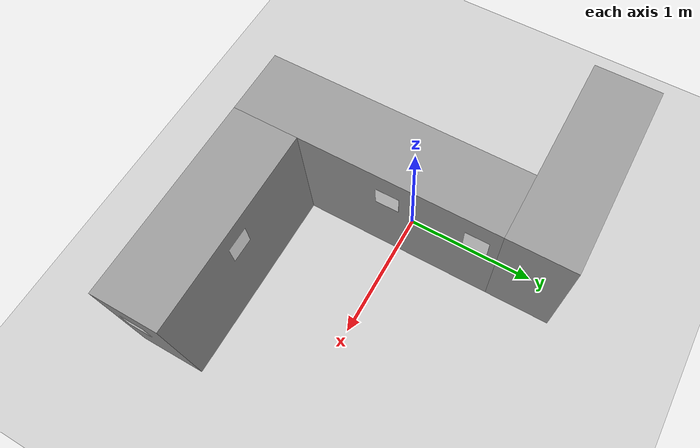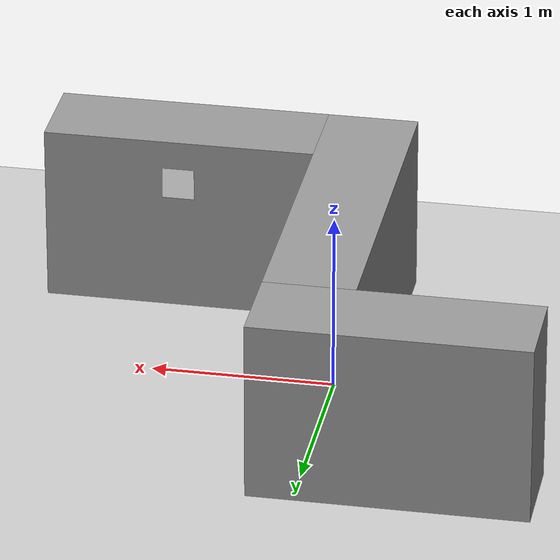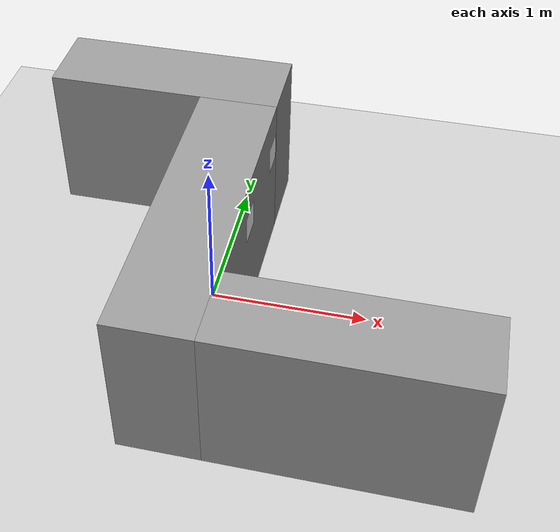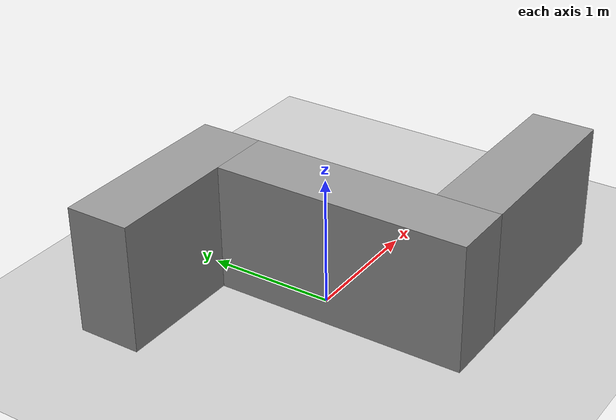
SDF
<sdf version="1.7">
 <world name="default">
  <model name="ground_plane">
   <static>1</static>
   <link name="link">
    <collision name="collision">
     <geometry><plane><normal>0 0 1</normal><size>100 100</size></plane></geometry>
     <surface>
      <contact><collide_bitmask>65535</collide_bitmask></contact>
      <friction><ode><mu>100</mu><mu2>50</mu2></ode></friction>
     </surface>
    </collision>
    <visual name="visual">
     <cast_shadows>0</cast_shadows>
     <geometry><plane><normal>0 0 1</normal><size>100 100</size></plane></geometry>
     <material>
      <script><uri>file://media/materials/scripts/gazebo.material</uri><name>Gazebo/Grey</name></script>
     </material>
    </visual>
   </link>
  </model>
  <model name="marker_0">
   <link name="marker">
    <visual name="visual">
     <geometry><box><size>0.1778 0.1778 1e-05</size></box></geometry>
     <material>
      <script>
       <uri>model://marker_0/materials/scripts</uri>
       <uri>model://marker_0/materials/textures</uri>
       <name>ArucoVisualMarker0/Marker</name>
      </script>
      <ambient>1 1 1 1</ambient>
      <diffuse>1 1 1 1</diffuse>
      <specular>0 0 0 1</specular>
      <emissive>1 1 1 0</emissive>
      <shader type="vertex"><normal_map>__default__</normal_map></shader>
     </material>
    </visual>
    <collision name="collision"><geometry><box><size>0.1778 0.1778 1e-05</size></box></geometry></collision>
   </link>
   <link name="marker_pad">
    <pose relative_to="marker">0 0 -0.001 0 -0 0</pose>
    <visual name="visual">
     <geometry><box><size>0.1778 0.1778 1e-05</size></box></geometry>
     <material>
      <lighting>1</lighting>
      <script><uri>file://media/materials/scripts/gazebo.material</uri><name>Gazebo/White</name></script>
      <ambient>0.3 0.3 0.3 1</ambient>
      <diffuse>0.7 0.7 0.7 1</diffuse>
      <specular>0.01 0.01 0.01 1</specular>
      <emissive>1 1 1 0</emissive>
      <shader type="vertex"><normal_map>__default__</normal_map></shader>
     </material>
    </visual>
    <collision name="collision"><geometry><box><size>0.1778 0.1778 1e-05</size></box></geometry></collision>
   </link>
   <joint name="marker_JOINT_marker_pad" type="revolute">
    <parent>marker</parent>
    <child>marker_pad</child>
    <axis>
     <xyz>0 0 1</xyz>
     <limit><upper>0</upper><lower>0</lower></limit>
     <dynamics><spring_reference>0</spring_reference><spring_stiffness>0</spring_stiffness></dynamics>
    </axis>
   </joint>
   <static>1</static>
   <pose>1.76 -1 0.75 0 1.57 0</pose>
  </model>
  <model name="marker_1">
   <link name="marker">
    <visual name="visual">
     <geometry><box><size>0.1778 0.1778 1e-05</size></box></geometry>
     <material>
      <script>
       <uri>model://marker_1/materials/scripts</uri>
       <uri>model://marker_1/materials/textures</uri>
       <name>ArucoVisualMarker1/Marker</name>
      </script>
      <ambient>1 1 1 1</ambient>
      <diffuse>1 1 1 1</diffuse>
      <specular>0 0 0 1</specular>
      <emissive>1 1 1 0</emissive>
      <shader type="vertex"><normal_map>__default__</normal_map></shader>
     </material>
    </visual>
    <collision name="collision"><geometry><box><size>0.1778 0.1778 1e-05</size></box></geometry></collision>
   </link>
   <link name="marker_pad">
    <pose relative_to="marker">0 0 -0.001 0 -0 0</pose>
    <visual name="visual">
     <geometry><box><size>0.1778 0.1778 1e-05</size></box></geometry>
     <material>
      <lighting>1</lighting>
      <script><uri>file://media/materials/scripts/gazebo.material</uri><name>Gazebo/White</name></script>
      <ambient>0.3 0.3 0.3 1</ambient>
      <diffuse>0.7 0.7 0.7 1</diffuse>
      <specular>0.01 0.01 0.01 1</specular>
      <emissive>1 1 1 0</emissive>
      <shader type="vertex"><normal_map>__default__</normal_map></shader>
     </material>
    </visual>
    <collision name="collision"><geometry><box><size>0.1778 0.1778 1e-05</size></box></geometry></collision>
   </link>
   <joint name="marker_JOINT_marker_pad" type="revolute">
    <parent>marker</parent>
    <child>marker_pad</child>
    <axis>
     <xyz>0 0 1</xyz>
     <limit><upper>0</upper><lower>0</lower></limit>
     <dynamics><spring_reference>0</spring_reference><spring_stiffness>0</spring_stiffness></dynamics>
    </axis>
   </joint>
   <static>1</static>
   <pose>1.00167 -0.749626 0.75 -1.57002 1.57 -2.4e-05</pose>
  </model>
  <model name="marker_2">
   <link name="marker">
    <visual name="visual">
     <geometry><box><size>0.1778 0.1778 1e-05</size></box></geometry>
     <material>
      <script>
       <uri>model://marker_2/materials/scripts</uri>
       <uri>model://marker_2/materials/textures</uri>
       <name>ArucoVisualMarker2/Marker</name>
      </script>
      <ambient>1 1 1 1</ambient>
      <diffuse>1 1 1 1</diffuse>
      <specular>0 0 0 1</specular>
      <emissive>1 1 1 0</emissive>
      <shader type="vertex"><normal_map>__default__</normal_map></shader>
     </material>
    </visual>
    <collision name="collision"><geometry><box><size>0.1778 0.1778 1e-05</size></box></geometry></collision>
   </link>
   <link name="marker_pad">
    <pose relative_to="marker">0 0 -0.001 0 -0 0</pose>
    <visual name="visual">
     <geometry><box><size>0.1778 0.1778 1e-05</size></box></geometry>
     <material>
      <lighting>1</lighting>
      <script><uri>file://media/materials/scripts/gazebo.material</uri><name>Gazebo/White</name></script>
      <ambient>0.3 0.3 0.3 1</ambient>
      <diffuse>0.7 0.7 0.7 1</diffuse>
      <specular>0.01 0.01 0.01 1</specular>
      <emissive>1 1 1 0</emissive>
      <shader type="vertex"><normal_map>__default__</normal_map></shader>
     </material>
    </visual>
    <collision name="collision"><geometry><box><size>0.1778 0.1778 1e-05</size></box></geometry></collision>
   </link>
   <joint name="marker_JOINT_marker_pad" type="revolute">
    <parent>marker</parent>
    <child>marker_pad</child>
    <axis>
     <xyz>0 0 1</xyz>
     <limit><upper>0</upper><lower>0</lower></limit>
     <dynamics><spring_reference>0</spring_reference><spring_stiffness>0</spring_stiffness></dynamics>
    </axis>
   </joint>
   <static>1</static>
   <pose>0.263077 -0.07 0.749978 3.1408 -1.57 -0.000796</pose>
  </model>
  <model name="marker_3">
   <link name="marker">
    <visual name="visual">
     <geometry><box><size>0.1778 0.1778 1e-05</size></box></geometry>
     <material>
      <script>
       <uri>model://marker_3/materials/scripts</uri>
       <uri>model://marker_3/materials/textures</uri>
       <name>ArucoVisualMarker3/Marker</name>
      </script>
      <ambient>1 1 1 1</ambient>
      <diffuse>1 1 1 1</diffuse>
      <specular>0 0 0 1</specular>
      <emissive>1 1 1 0</emissive>
      <shader type="vertex"><normal_map>__default__</normal_map></shader>
     </material>
    </visual>
    <collision name="collision"><geometry><box><size>0.1778 0.1778 1e-05</size></box></geometry></collision>
   </link>
   <link name="marker_pad">
    <pose relative_to="marker">0 0 -0.001 0 -0 0</pose>
    <visual name="visual">
     <geometry><box><size>0.1778 0.1778 1e-05</size></box></geometry>
     <material>
      <lighting>1</lighting>
      <script><uri>file://media/materials/scripts/gazebo.material</uri><name>Gazebo/White</name></script>
      <ambient>0.3 0.3 0.3 1</ambient>
      <diffuse>0.7 0.7 0.7 1</diffuse>
      <specular>0.01 0.01 0.01 1</specular>
      <emissive>1 1 1 0</emissive>
      <shader type="vertex"><normal_map>__default__</normal_map></shader>
     </material>
    </visual>
    <collision name="collision"><geometry><box><size>0.1778 0.1778 1e-05</size></box></geometry></collision>
   </link>
   <joint name="marker_JOINT_marker_pad" type="revolute">
    <parent>marker</parent>
    <child>marker_pad</child>
    <axis>
     <xyz>0 0 1</xyz>
     <limit><upper>0</upper><lower>0</lower></limit>
     <dynamics><spring_reference>0</spring_reference><spring_stiffness>0</spring_stiffness></dynamics>
    </axis>
   </joint>
   <static>1</static>
   <pose>0.26 0.59 0.75 1.57078 1e-06 1.56579</pose>
  </model>
  <model name="elka">
   <link name="link">
    <inertial>
     <mass>1</mass>
     <inertia>
      <ixx>0.166667</ixx>
      <ixy>0</ixy>
      <ixz>0</ixz>
      <iyy>0.166667</iyy>
      <iyz>0</iyz>
      <izz>0.166667</izz>
     </inertia>
    </inertial>
    <visual name="visual">
     <geometry><box><size>1.5 0.5 1</size></box></geometry>
     <material>
      <script><name>Gazebo/Grey</name><uri>file://media/materials/scripts/gazebo.material</uri></script>
      <shader type="pixel"><normal_map>__default__</normal_map></shader>
      <ambient>0.3 0.3 0.3 1</ambient>
      <diffuse>0.7 0.7 0.7 1</diffuse>
      <specular>0.01 0.01 0.01 1</specular>
      <emissive>0 0 0 1</emissive>
     </material>
    </visual>
    <collision name="collision">
     <geometry><box><size>1.5 0.5 1</size></box></geometry>
     <surface>
      <friction>
       <ode><mu>1</mu><mu2>1</mu2><fdir1>0 0 0</fdir1><slip1>0</slip1><slip2>0</slip2></ode>
       <torsional>
        <coefficient>1</coefficient>
        <patch_radius>0</patch_radius>
        <surface_radius>0</surface_radius>
        <use_patch_radius>1</use_patch_radius>
        <ode><slip>0</slip></ode>
       </torsional>
      </friction>
      <bounce><restitution_coefficient>0</restitution_coefficient><threshold>1e+06</threshold></bounce>
      <contact>
       <collide_without_contact>0</collide_without_contact>
       <collide_without_contact_bitmask>1</collide_without_contact_bitmask>
       <collide_bitmask>1</collide_bitmask>
       <ode>
        <soft_cfm>0</soft_cfm>
        <soft_erp>0.2</soft_erp>
        <kp>1e+13</kp>
        <kd>1</kd>
        <max_vel>0.01</max_vel>
        <min_depth>0</min_depth>
       </ode>
       <bullet>
        <split_impulse>1</split_impulse>
        <split_impulse_penetration_threshold>-0.01</split_impulse_penetration_threshold>
        <soft_cfm>0</soft_cfm>
        <soft_erp>0.2</soft_erp>
        <kp>1e+13</kp>
        <kd>1</kd>
       </bullet>
      </contact>
     </surface>
    </collision>
   </link>
   <link name="link_1">
    <inertial>
     <mass>1</mass>
     <inertia>
      <ixx>0.166667</ixx>
      <ixy>0</ixy>
      <ixz>0</ixz>
      <iyy>0.166667</iyy>
      <iyz>0</iyz>
      <izz>0.166667</izz>
     </inertia>
    </inertial>
    <pose>-1 0.75 0 0 -0 0</pose>
    <visual name="visual">
     <geometry><box><size>0.5 2 1</size></box></geometry>
     <material>
      <lighting>1</lighting>
      <script><uri>file://media/materials/scripts/gazebo.material</uri><name>Gazebo/Grey</name></script>
      <shader type="pixel"><normal_map>__default__</normal_map></shader>
      <ambient>0.3 0.3 0.3 1</ambient>
      <diffuse>0.7 0.7 0.7 1</diffuse>
      <specular>0.01 0.01 0.01 1</specular>
      <emissive>0 0 0 1</emissive>
     </material>
    </visual>
    <collision name="collision">
     <geometry><box><size>0.5 2 1</size></box></geometry>
     <surface>
      <friction>
       <ode><mu>1</mu><mu2>1</mu2><fdir1>0 0 0</fdir1><slip1>0</slip1><slip2>0</slip2></ode>
       <torsional>
        <coefficient>1</coefficient>
        <patch_radius>0</patch_radius>
        <surface_radius>0</surface_radius>
        <use_patch_radius>1</use_patch_radius>
        <ode><slip>0</slip></ode>
       </torsional>
      </friction>
      <bounce><restitution_coefficient>0</restitution_coefficient><threshold>1e+06</threshold></bounce>
      <contact>
       <collide_without_contact>0</collide_without_contact>
       <collide_without_contact_bitmask>1</collide_without_contact_bitmask>
       <collide_bitmask>1</collide_bitmask>
       <ode>
        <soft_cfm>0</soft_cfm>
        <soft_erp>0.2</soft_erp>
        <kp>1e+13</kp>
        <kd>1</kd>
        <max_vel>0.01</max_vel>
        <min_depth>0</min_depth>
       </ode>
       <bullet>
        <split_impulse>1</split_impulse>
        <split_impulse_penetration_threshold>-0.01</split_impulse_penetration_threshold>
        <soft_cfm>0</soft_cfm>
        <soft_erp>0.2</soft_erp>
        <kp>1e+13</kp>
        <kd>1</kd>
       </bullet>
      </contact>
     </surface>
    </collision>
   </link>
   <link name="link_clone">
    <inertial>
     <mass>1</mass>
     <inertia>
      <ixx>0.166667</ixx>
      <ixy>0</ixy>
      <ixz>0</ixz>
      <iyy>0.166667</iyy>
      <iyz>0</iyz>
      <izz>0.166667</izz>
     </inertia>
    </inertial>
    <pose>-1.5 2 0 0 -0 0</pose>
    <visual name="visual">
     <geometry><box><size>1.5 0.5 1</size></box></geometry>
     <material>
      <script><name>Gazebo/Grey</name><uri>file://media/materials/scripts/gazebo.material</uri></script>
      <shader type="pixel"><normal_map>__default__</normal_map></shader>
      <ambient>0.3 0.3 0.3 1</ambient>
      <diffuse>0.7 0.7 0.7 1</diffuse>
      <specular>0.01 0.01 0.01 1</specular>
      <emissive>0 0 0 1</emissive>
     </material>
    </visual>
    <collision name="collision">
     <geometry><box><size>1.5 0.5 1</size></box></geometry>
     <surface>
      <friction>
       <ode><mu>1</mu><mu2>1</mu2><fdir1>0 0 0</fdir1><slip1>0</slip1><slip2>0</slip2></ode>
       <torsional>
        <coefficient>1</coefficient>
        <patch_radius>0</patch_radius>
        <surface_radius>0</surface_radius>
        <use_patch_radius>1</use_patch_radius>
        <ode><slip>0</slip></ode>
       </torsional>
      </friction>
      <bounce><restitution_coefficient>0</restitution_coefficient><threshold>1e+06</threshold></bounce>
      <contact>
       <collide_without_contact>0</collide_without_contact>
       <collide_without_contact_bitmask>1</collide_without_contact_bitmask>
       <collide_bitmask>1</collide_bitmask>
       <ode>
        <soft_cfm>0</soft_cfm>
        <soft_erp>0.2</soft_erp>
        <kp>1e+13</kp>
        <kd>1</kd>
        <max_vel>0.01</max_vel>
        <min_depth>0</min_depth>
       </ode>
       <bullet>
        <split_impulse>1</split_impulse>
        <split_impulse_penetration_threshold>-0.01</split_impulse_penetration_threshold>
        <soft_cfm>0</soft_cfm>
        <soft_erp>0.2</soft_erp>
        <kp>1e+13</kp>
        <kd>1</kd>
       </bullet>
      </contact>
     </surface>
    </collision>
   </link>
   <static>0</static>
   <pose>1 -1 0.5 0 -0 0</pose>
  </model>
 </world>
</sdf>
